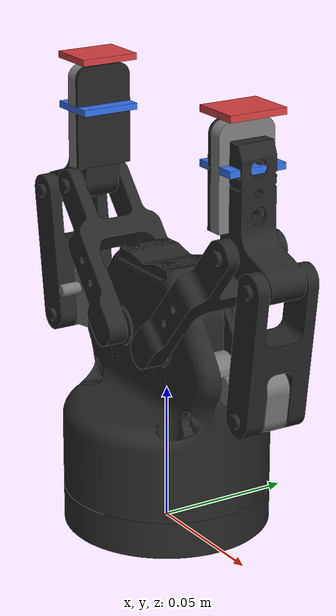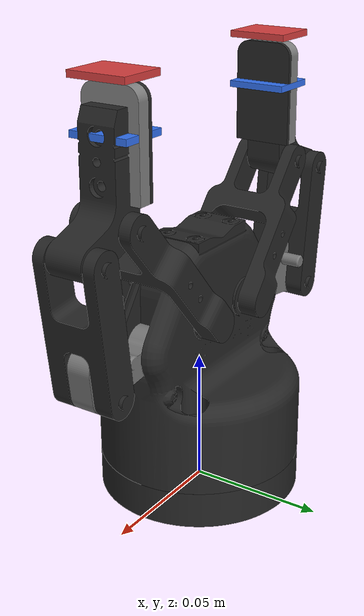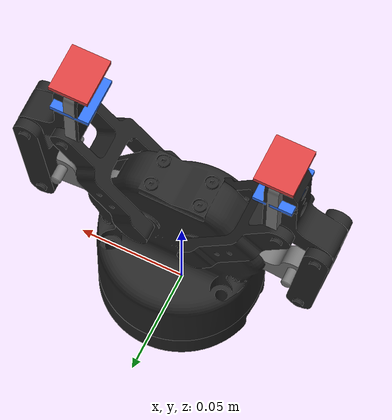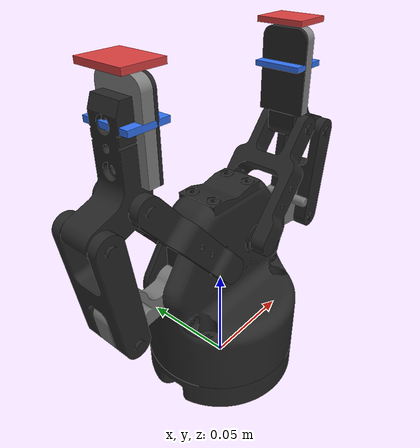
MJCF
<mujoco model="robotiq_2f85_mirrored">
  <compiler angle="radian" meshdir="ko_mirror_meshes" autolimits="true"/>

  <option cone="elliptic" impratio="10"/>

  <asset>
    <material name="metal" rgba="0.58 0.58 0.58 1"/>
    <material name="silicone" rgba="0.1882 0.1882 0.1882 1"/>
    <material name="gray" rgba="0.4627 0.4627 0.4627 1"/>
    <material name="black" rgba="0.149 0.149 0.149 1"/>

    <mesh class="2f85" file="base_mount.stl"/>
    <mesh class="2f85" file="base.stl"/>
    <mesh class="2f85" file="driver.stl"/>
    <mesh class="2f85" file="coupler.stl"/>
    <mesh class="2f85" file="follower.stl"/>
    <mesh class="2f85" file="pad.stl"/>
    <mesh class="2f85" file="silicone_pad.stl"/>
    <mesh class="2f85" file="spring_link.stl"/>
  </asset>

  <default>
    <default class="2f85">
      <mesh scale="0.001 0.001 0.001"/>
      <general biastype="affine"/>

      <joint axis="1 -0 -0"/>
      <default class="driver">
        <joint range="0 0.8" armature="0.005" damping="0.1" solimplimit="0.95 0.99 0.001" solreflimit="0.005 1"/>
      </default>
      <default class="follower">
        <joint range="-0.872664 0.872664" armature="0.001" pos="0 -0.018 0.0065" solimplimit="0.95 0.99 0.001" solreflimit="0.005 1"/>
      </default>
      <default class="spring_link">
        <joint range="-0.29670597283 0.8" armature="0.001" stiffness="0.05" springref="2.62" damping="0.00125"/>
      </default>
      <default class="coupler">
        <joint range="-1.57 0" armature="0.001" solimplimit="0.95 0.99 0.001" solreflimit="0.005 1"/>
      </default>

      <default class="visual">
        <geom type="mesh" contype="0" conaffinity="0" group="2"/>
      </default>
      <default class="collision">
        <geom type="mesh" group="3"/>
        <default class="pad_box1">
          <geom mass="0" type="box" pos="0 -0.0026 0.028125" size="0.011 0.004 0.009375" friction="0.7"
            solimp="0.95 0.99 0.001" solref="0.004 1" priority="1" rgba="0.55 0.55 0.55 1"/>
        </default>
        <default class="pad_box2">
          <geom mass="0" type="box" pos="0 -0.0026 0.009375" size="0.011 0.004 0.009375" friction="0.6"
            solimp="0.95 0.99 0.001" solref="0.004 1" priority="1" rgba="0.45 0.45 0.45 1"/>
        </default>
      </default>
    </default>
  </default>

  <worldbody>
    <body name="base_mount" pos="0 0 0.007" childclass="2f85">
      <geom class="visual" mesh="base_mount" material="black"/>
      <geom class="collision" mesh="base_mount"/>
      <body name="base" pos="0 0 0.0038" quat="0.70710678 0 0 0.70710678">
        <inertial mass="0.777441" pos="0 -2.70394e-05 0.0354675" quat="0.99999883 -0.0015284882 0 0"
          diaginertia="0.000260285 0.000225381 0.000152708"/>
        <geom class="visual" mesh="base" material="black"/>
        <geom class="collision" mesh="base"/>
        <site name="pinch" pos="0 0 0.145" type="sphere" group="5" rgba="0.9 0.9 0.9 1" size="0.005"/>
        <!-- Right-hand side 4-bar linkage -->
        <body name="right_driver" pos="0 0.0306011 0.054904">
          <inertial mass="0.00899563" pos="-2.96931e-12 0.0177547 0.00107314" quat="0.68130119 0.7320032 0 0"
            diaginertia="1.72352e-06 1.60906e-06 3.22006e-07"/>
          <joint name="right_driver_joint" class="driver"/>
          <geom class="visual" mesh="driver" material="gray"/>
          <geom class="collision" mesh="driver"/>
          <body name="right_coupler" pos="0 0.0315 -0.0041">
            <inertial mass="0.0140974" pos="0 0.00301209 0.0232175" quat="-0.70563554 0.04559037 0.04559037 0.70563554"
              diaginertia="4.16206e-06 3.52216e-06 8.88131e-07"/>
            <joint name="right_coupler_joint" class="coupler"/>
            <geom class="visual" mesh="coupler" material="black"/>
            <geom class="collision" mesh="coupler"/>
          </body>
        </body>
        <body name="right_spring_link" pos="0 0.0132 0.0609">
          <inertial mass="0.0221642" pos="8.65005e-09 0.0181624 0.0212658" quat="-0.66340317 0.24473706 0.24473706 0.66340317"
            diaginertia="8.96853e-06 6.71733e-06 2.63931e-06"/>
          <joint name="right_spring_link_joint" class="spring_link"/>
          <geom class="visual" mesh="spring_link" material="black"/>
          <geom class="collision" mesh="spring_link"/>
          <body name="right_follower" pos="0 0.055 0.0375">
            <inertial mass="0.0125222" pos="0 -0.011046 0.0124786" quat="0.98643655 0.16414304 0 0"
              diaginertia="2.67415e-06 2.4559e-06 6.02031e-07"/>
            <joint name="right_follower_joint" class="follower"/>
            <geom class="visual" mesh="follower" material="black"/>
            <geom class="collision" mesh="follower"/>
            <body name="right_pad" pos="0 -0.0189 0.01352">
              <geom name="right_pad_f1ext" type="box" mass="0" size="0.011 0.009 0.0012" pos="0 -0.0026 0.0402" quat="1 0 0 0" friction="0.7" solimp="0.95 0.99 0.001" solref="0.004 1" priority="1" rgba="0.85 0.25 0.25 1"/>
              <geom name="right_pad_f2ext" type="box" mass="0" size="0.011 0.009 0.0012" pos="0 -0.0026 0.0218" quat="1 0 0 0" friction="0.7" solimp="0.95 0.99 0.001" solref="0.004 1" priority="1" rgba="0.20 0.45 0.95 1"/>
              <geom class="pad_box1" name="right_pad1"/>
              <geom class="pad_box2" name="right_pad2"/>
              <inertial mass="0.0035" pos="0 -0.0025 0.0185" quat="-0.70710678 0 0 0.70710678"
                diaginertia="4.73958e-07 3.64583e-07 1.23958e-07"/>
              <geom class="visual" mesh="pad"/>
              <body name="right_silicone_pad">
                <geom class="visual" mesh="silicone_pad" material="black"/>
              </body>
            </body>
          </body>
        </body>
        <!-- Left-hand side 4-bar linkage -->
        <body name="left_driver" pos="0 -0.0306011 0.054904" quat="0 0 0 1">
          <inertial mass="0.00899563" pos="0 0.0177547 0.00107314" quat="0.68130119 0.7320032 0 0"
            diaginertia="1.72352e-06 1.60906e-06 3.22006e-07"/>
          <joint name="left_driver_joint" class="driver"/>
          <geom class="visual" mesh="driver" material="gray"/>
          <geom class="collision" mesh="driver"/>
          <body name="left_coupler" pos="0 0.0315 -0.0041">
            <inertial mass="0.0140974" pos="0 0.00301209 0.0232175" quat="-0.70563554 0.04559037 0.04559037 0.70563554"
              diaginertia="4.16206e-06 3.52216e-06 8.88131e-07"/>
            <joint name="left_coupler_joint" class="coupler"/>
            <geom class="visual" mesh="coupler" material="black"/>
            <geom class="collision" mesh="coupler"/>
          </body>
        </body>
        <body name="left_spring_link" pos="0 -0.0132 0.0609" quat="0 0 0 1">
          <inertial mass="0.0221642" pos="8.65005e-09 0.0181624 0.0212658" quat="-0.66340317 0.24473706 0.24473706 0.66340317"
            diaginertia="8.96853e-06 6.71733e-06 2.63931e-06"/>
          <joint name="left_spring_link_joint" class="spring_link"/>
          <geom class="visual" mesh="spring_link" material="black"/>
          <geom class="collision" mesh="spring_link"/>
          <body name="left_follower" pos="0 0.055 0.0375">
            <inertial mass="0.0125222" pos="0 -0.011046 0.0124786" quat="0.98643655 0.16414304 0 0"
              diaginertia="2.67415e-06 2.4559e-06 6.02031e-07"/>
            <joint name="left_follower_joint" class="follower"/>
            <geom class="visual" mesh="follower" material="black"/>
            <geom class="collision" mesh="follower"/>
            <body name="left_pad" pos="0 -0.0189 0.01352">
              <geom name="left_pad_f1ext" type="box" mass="0" size="0.011 0.009 0.0012" pos="0 -0.0026 0.0402" quat="1 0 0 0" friction="0.7" solimp="0.95 0.99 0.001" solref="0.004 1" priority="1" rgba="0.85 0.25 0.25 1"/>
              <geom name="left_pad_f2ext" type="box" mass="0" size="0.011 0.009 0.0012" pos="0 -0.0026 0.0218" quat="1 0 0 0" friction="0.7" solimp="0.95 0.99 0.001" solref="0.004 1" priority="1" rgba="0.20 0.45 0.95 1"/>
              <geom class="pad_box1" name="left_pad1"/>
              <geom class="pad_box2" name="left_pad2"/>
              <inertial mass="0.0035" pos="0 -0.0025 0.0185" quat="-0.70710678 0 0 0.70710678"
                diaginertia="4.73958e-07 3.64583e-07 1.23958e-07"/>
              <geom class="visual" mesh="pad"/>
              <body name="left_silicone_pad">
                <geom class="visual" mesh="silicone_pad" material="black"/>
              </body>
            </body>
          </body>
        </body>
      </body>
    </body>
  </worldbody>

  <contact>
    <exclude body1="base" body2="left_driver"/>
    <exclude body1="base" body2="right_driver"/>
    <exclude body1="base" body2="left_spring_link"/>
    <exclude body1="base" body2="right_spring_link"/>
    <exclude body1="right_coupler" body2="right_follower"/>
    <exclude body1="left_coupler" body2="left_follower"/>
    <exclude body1="right_pad" body2="left_pad"/>
  </contact>

  <tendon>
    <fixed name="split">
      <joint joint="right_driver_joint" coef="0.5"/>
      <joint joint="left_driver_joint" coef="0.5"/>
    </fixed>
  </tendon>

  <equality>
    <connect anchor="0 0 0" body1="right_follower" body2="right_coupler" solimp="0.95 0.99 0.001" solref="0.005 1"/>
    <connect anchor="0 0 0" body1="left_follower" body2="left_coupler" solimp="0.95 0.99 0.001" solref="0.005 1"/>
    <joint joint1="right_driver_joint" joint2="left_driver_joint" polycoef="0 1 0 0 0" solimp="0.95 0.99 0.001"
      solref="0.005 1"/>
  </equality>

  <actuator>
    <general class="2f85" name="fingers_actuator" tendon="split" forcerange="-5 5" ctrlrange="0 255"
      gainprm="0.3137255 0 0" biasprm="0 -100 -10"/>
  </actuator>
</mujoco>
